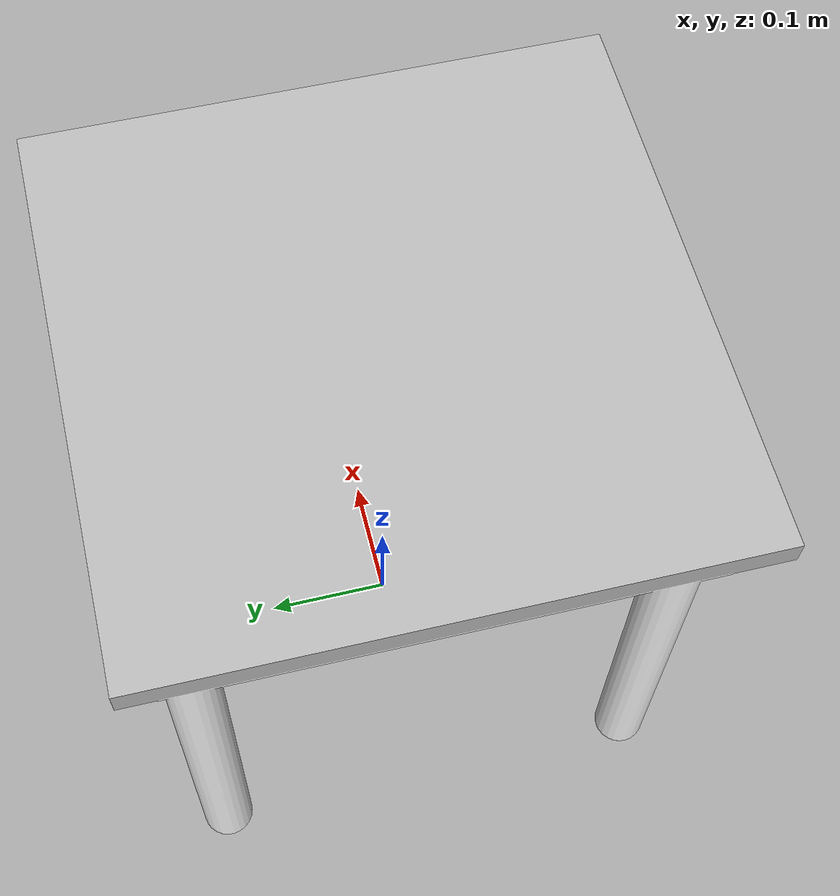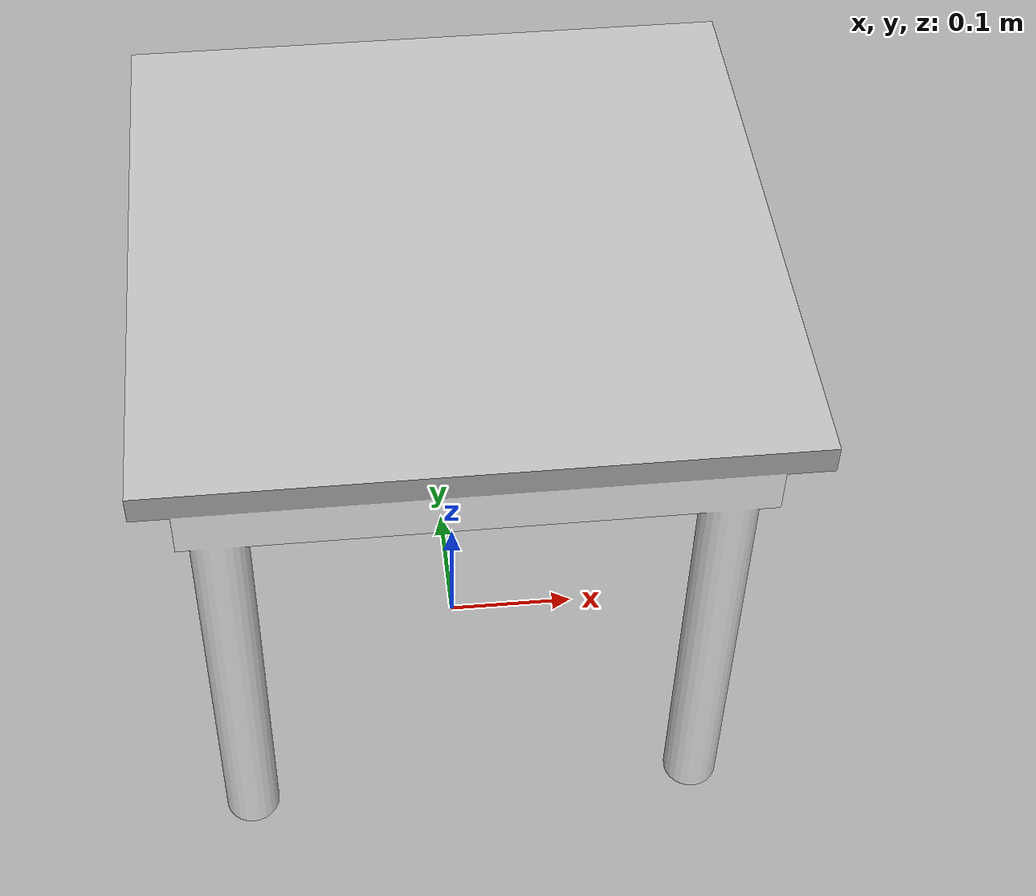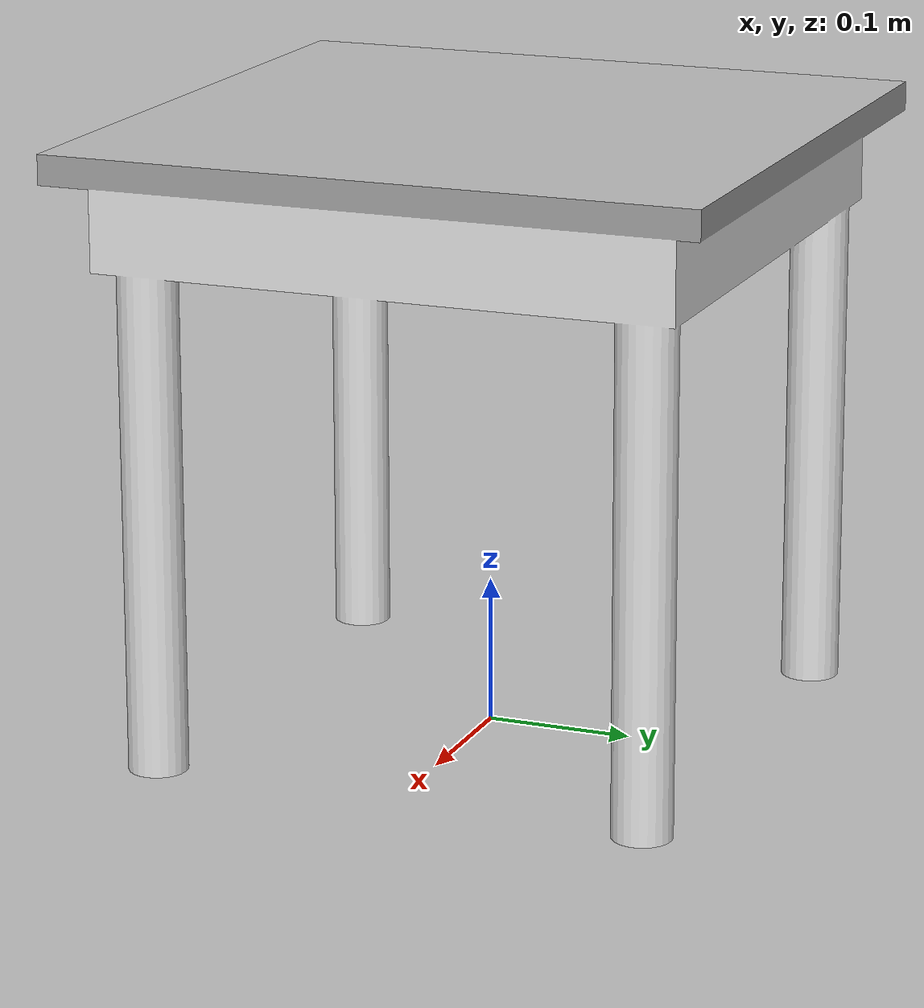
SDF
<?xml version="1.0" ?>
<sdf version='1.4'>
    <model name='doll_table'>
      <static>1</static>
      <link name='link'>
        <visual name='visual'>
          <geometry>
            <mesh>
              <uri>model://doll_table/model.dae</uri>
              <scale>2 2 2</scale>
            </mesh>
          </geometry>
        </visual>
        <collision name='collision'>
          <pose>0 0 -0.005 0 0 0</pose>
          <geometry>
            <mesh>
              <uri>model://doll_table/model.stl</uri>
              <scale>0.0514 0.0514 0.0514</scale>
            </mesh>
          </geometry>
          <max_contacts>10</max_contacts>
          <surface>
            <bounce/>
            <friction>
              <ode/>
            </friction>
            <contact>
              <ode/>
            </contact>
          </surface>
        </collision>
        <velocity_decay>
          <linear>0</linear>
          <angular>0</angular>
        </velocity_decay>
        <inertial>
          <inertia>
            <ixx>0.09115</ixx>
            <ixy>0</ixy>
            <ixz>0</ixz>
            <iyy>0.09115</iyy>
            <iyz>0</iyz>
            <izz>0.17646</izz>
          </inertia>
          <pose frame=''>0 0 0.4 0 0 0</pose>
          <mass>3.5</mass>
        </inertial>
        <self_collide>0</self_collide>
        <kinematic>0</kinematic>
        <gravity>1</gravity>
      </link>
    </model>
</sdf>
